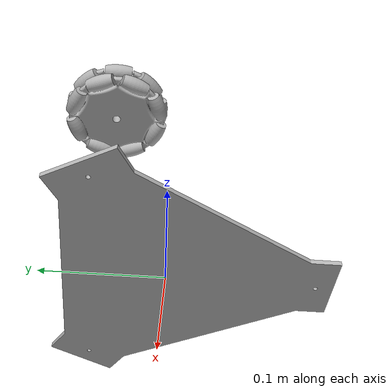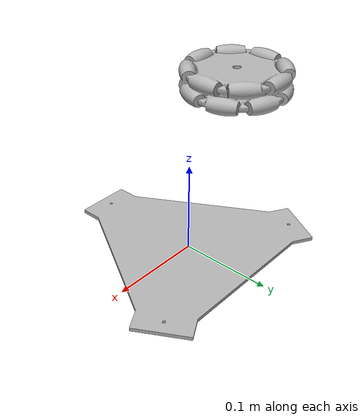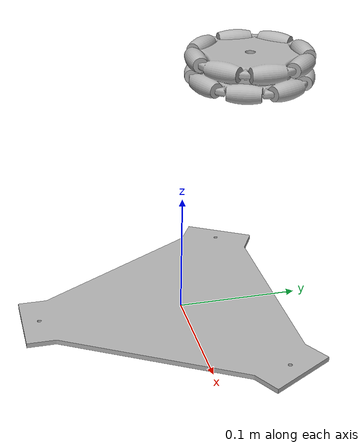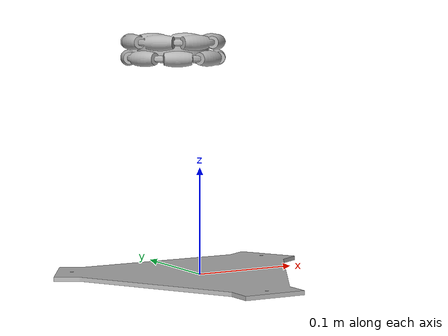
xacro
<?xml version="1.0" ?>
<robot name="ow_bot" xmlns:xacro="http://www.ros.org/wiki/xacro">

    <xacro:include filename="$(find ow_bot)/description/materials.xacro" />
    <xacro:include filename="$(find ow_bot)/description/ow_bot.trans" />
    <xacro:include filename="$(find ow_bot)/description/ow_bot.gazebo" />
    <xacro:include filename="$(find ow_bot)/description/omniwheel.xacro" />

    <link name="base_link">
        <visual>
            <origin xyz="0 0 0" rpy="0 0 0"/>
            <geometry>
                <mesh filename="file://$(find ow_bot)/meshes/base.stl" scale="0.001 0.001 0.001"/>
            </geometry>
            <material name="silver"/>
        </visual>
        <collision>
            <geometry>
                <box size="0.263 0.228 0.004"/>
            </geometry>
        </collision>
    </link>

    <!-- Instance of left wheel -->
    <link name="left_wheel">
        <visual>
            <origin xyz="0 0 0" rpy="0 0 0"/>
            <geometry>
                <mesh filename="file://$(find ow_bot)/meshes/omniwheel.stl" scale="0.001 0.001 0.001"/>
            </geometry>
            <material name="silver"/>
        </visual>
        <collision>
            <origin xyz="0 0 0" rpy="0 0 0"/>
            <geometry>
            <cylinder radius="0.05" length="0.03"/>
            </geometry>
        </collision>
    </link>

    <joint name="left_wheel_joint" type="continuous">
        <parent link="base_link"/>
        <child link="left_wheel"/>
        <origin xyz="0.0 0.0 0" rpy="1.57 0 0"/>
        <axis xyz="0 0 1"/>
    </joint>

</robot>

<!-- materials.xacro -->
<robot name="ow_bot" xmlns:xacro="http://www.ros.org/wiki/xacro" >

<material name="silver">
  <color rgba="0.700 0.700 0.700 1.000"/>
</material>

</robot>

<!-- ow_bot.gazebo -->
<robot name="ow_bot" xmlns:xacro="http://www.ros.org/wiki/xacro" >

<xacro:property name="body_color" value="Gazebo/Silver" />

<gazebo>
  <plugin name="control" filename="libgazebo_ros_control.so"/>
</gazebo>
<gazebo reference="base_link">
  <material>${body_color}</material>
  <mu1>0.2</mu1>
  <mu2>0.2</mu2>
  <self_collide>true</self_collide>
  <gravity>true</gravity>
</gazebo>

<gazebo reference="perfil_ts">
  <material>${body_color}</material>
  <mu1>0.2</mu1>
  <mu2>0.2</mu2>
  <self_collide>true</self_collide>
</gazebo>

<gazebo reference="perfil_ds">
  <material>${body_color}</material>
  <mu1>0.2</mu1>
  <mu2>0.2</mu2>
  <self_collide>true</self_collide>
</gazebo>

<gazebo reference="perfil_is">
  <material>${body_color}</material>
  <mu1>0.2</mu1>
  <mu2>0.2</mu2>
  <self_collide>true</self_collide>
</gazebo>

<gazebo reference="perfil_ti">
  <material>${body_color}</material>
  <mu1>0.2</mu1>
  <mu2>0.2</mu2>
  <self_collide>true</self_collide>
</gazebo>

<gazebo reference="perfil_di">
  <material>${body_color}</material>
  <mu1>0.2</mu1>
  <mu2>0.2</mu2>
  <self_collide>true</self_collide>
</gazebo>

<gazebo reference="perfil_ii">
  <material>${body_color}</material>
  <mu1>0.2</mu1>
  <mu2>0.2</mu2>
  <self_collide>true</self_collide>
</gazebo>

<gazebo reference="esquina_izq">
  <material>${body_color}</material>
  <mu1>0.2</mu1>
  <mu2>0.2</mu2>
  <self_collide>true</self_collide>
</gazebo>

<gazebo reference="esquina_der">
  <material>${body_color}</material>
  <mu1>0.2</mu1>
  <mu2>0.2</mu2>
  <self_collide>true</self_collide>
</gazebo>

<gazebo reference="esquina_front">
  <material>${body_color}</material>
  <mu1>0.2</mu1>
  <mu2>0.2</mu2>
  <self_collide>true</self_collide>
</gazebo>

<gazebo reference="servo_izq">
  <material>${body_color}</material>
  <mu1>0.2</mu1>
  <mu2>0.2</mu2>
  <self_collide>true</self_collide>
</gazebo>

<gazebo reference="servo_der">
  <material>${body_color}</material>
  <mu1>0.2</mu1>
  <mu2>0.2</mu2>
  <self_collide>true</self_collide>
</gazebo>

<gazebo reference="servo_front">
  <material>${body_color}</material>
  <mu1>0.2</mu1>
  <mu2>0.2</mu2>
  <self_collide>true</self_collide>
</gazebo>

</robot>
